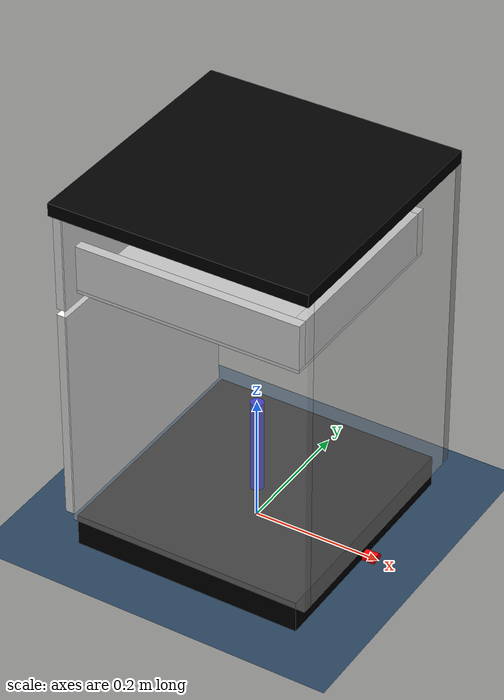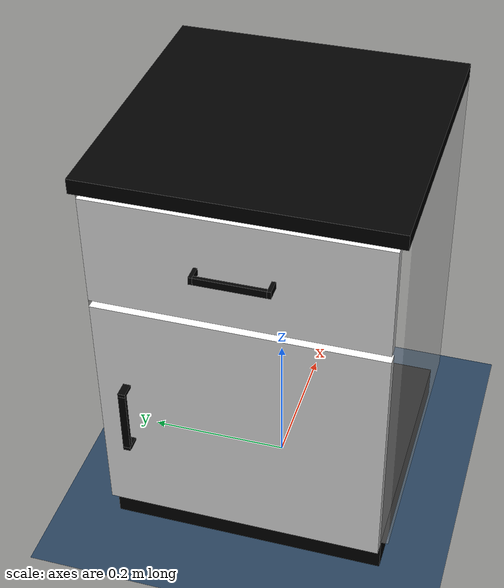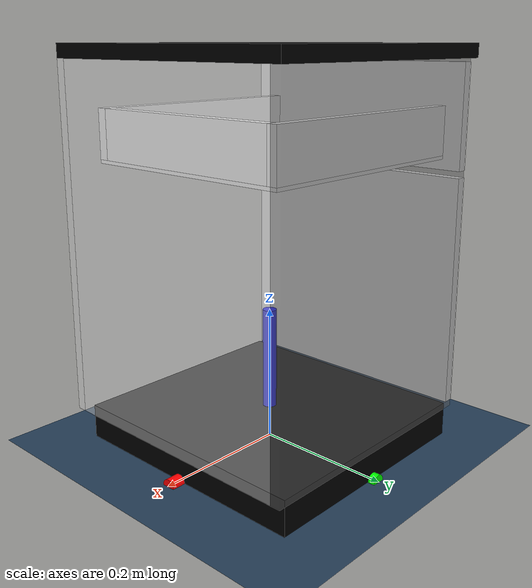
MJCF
<!--cabinet，用于截图-->
<mujoco model="jk5_cabinet">
    <include file="basic_env.xml"/>
    <asset>
        <material name="MatMetal" specular="1" shininess="0.3" rgba="0.9 0.9 0.9 1"/>
        <material name="MatDarkWood" texrepeat="3 3" specular="0.4" shininess="0.1"/>
        <material name="MatLightWood" texrepeat="3 3" specular="0.4" shininess="0.1"/>
    </asset>
    <worldbody>
        <body name="cabinet" pos="0 0 0" quat="0 0 0 1">
            <!--按压任务-->
            <body name="top board" pos="0 0 0.565">
                <geom size=".2 .2 .01" pos="0 0 0" type="box" rgba="0 0 0 1"
                      solimp="0.1 0.3 0.001 0.5 2" solref="-20000.0 -0.1"/>
                <inertial pos="0 0 0" mass="1000" diaginertia="0.1 0.1 0.1"/>
            </body>
            <!--抽屉任务。
            关闭时，把手中心实际位置为：0.8-0.2-0.0175,-0.1135,0.2+0.42+0.055=0.5825,-0.1135,0.675 -->
            <!--因此相对桌子底部中心的偏移为0.2175,0,0.475 -->
            <body name="drawer" pos="0.01 0 0.42">
                <!--底部-->
                <geom size=".175 .1625 .0025" pos="0 0 -0.0025" type="box" rgba="1 1 1 1"/>
                <!--侧面-->
                <geom size=".175 .0075 .035" pos="0 -0.1550 0.035" type="box" rgba="1 1 1 1"/>
                <geom size=".175 .0075 .035" pos="0 0.1550 0.035" type="box" rgba="1 1 1 1"/>
                <!--后面-->
                <geom size=".0075 .1475 .035" pos="-0.1675 0 0.035" type="box" rgba="1 1 1 1"/>
                <!--前面-->
                <geom size=".0075 .19 .075" pos="0.1825 0 0.055" type="box" rgba="1 1 1 1"
                      contype="0" conaffinity="0"/>
                <!--把手-->
                <body name="drawer handle part1" pos="0.19 0 0.055">
                    <geom size=".01 .0025 .005" pos="0.01 0.0475 0" type="box" rgba="0 0 0 1"/>
                    <geom size=".01 .0025 .005" pos="0.01 -0.0475 0" type="box" rgba="0 0 0 1"/>
                </body>
                <body name="drawer handle part2" pos="0.2075 0 0.055">
                    <geom size=".0025 .045 .005" pos="0 0 0" type="box" rgba="0 0 0 1"/>
                </body>
                <inertial pos="0 0 0" mass="1" diaginertia="0.1 0.1 0.1"/>
                <joint name="drawer joint" type="slide" pos="0 0 0" axis="1 0 0" range="0 0.3" limited="true"
                       damping="10" frictionloss="10"/>
            </body>
            <!--因此相对桌子底部中心的偏移为0.2175,-0.15,0.22 -->
            <body name="door" pos="0.1925 0 0.22">
                <!--门板-->
                <geom name="panel" size="0.0075 0.19 .17" type="box" material="MatDarkWood"/>
                <!--把手-->
                <body name="door handle part1" pos="0.0075 -0.15 0">
                    <geom size=".01 .005 .0025" pos="0.01 0 0.0475" type="box" rgba="0 0 0 1"/>
                    <geom size=".01 .005 .0025" pos="0.01 0 -0.0475" type="box" rgba="0 0 0 1"/>
                </body>
                <body name="door handle part2" pos="0.025 -0.15 0">
                    <geom size=".0025 .005 .045" pos="0 0 0" type="box" rgba="0 0 0 1"/>
                </body>
                <inertial pos="0.0296816 -0.00152345 0" quat="0.701072 0 0 0.713091"
                          mass="2.43455" diaginertia="0.0913751 0.0521615 0.043714"/>
                <joint name="door joint" pos="0 0.19 0" axis="0 0 1" range="0.0 1.5707" limited="true"
                       damping="1" frictionloss="1"/>
            </body>
            <!--无关接触-->
            <body name="bottem board" pos="0 0 0.025">
                <geom size=".18 .19 .025" pos="0 0 0" type="box" rgba="0 0 0 1"/>
                <inertial pos="0 0 0" mass="1000" diaginertia="0.1 0.1 0.1"/>
            </body>
            <body name="left board" pos="-0.01 0.1925 0.3025">
                <geom size=".19 .0075 0.2525" pos="0 0 0" type="box" rgba="1 1 1 0.5"/>
                <inertial pos="0 0 0" mass="1" diaginertia="0.1 0.1 0.1"/>
            </body>
            <body name="right board" pos="-0.01 -0.1925 0.3025">
                <geom size=".19 .0075 0.2525" pos="0 0 0" type="box" rgba="0.5 0.5 0.5 0.5"/>
                <inertial pos="0 0 0" mass="1" diaginertia="0.1 0.1 0.1"/>
            </body>
            <body name="back board" pos="-0.1925 0 0.3025">
                <geom size=".0075 .185 0.2525" pos="0 0 0" type="box" rgba="1 1 1 0.5"/>
                <inertial pos="0 0 0" mass="1" diaginertia="0.1 0.1 0.1"/>
            </body>
        </body>
    </worldbody>
</mujoco>

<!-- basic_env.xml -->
<mujoco model="basic setting">
    <compiler angle="radian" meshdir="../meshes/" inertiafromgeom="false" coordinate="local"/>
    <size njmax="5000" nconmax="1000"/>
    <option timestep="2e-3">
        <flag contact="enable" warmstart="disable" frictionloss="enable"/>
    </option>
    <default>
        <geom solref=".002 1" friction="1 0.005 0.0001" condim="4"/>
    </default>
    <visual>
        <map force="10" torque="1"/>
        <rgba contactforce="1 0 0 1" contacttorque="0 1 0 1" contactfriction="0 0 1 1"/>
    </visual>
    <asset>
        <material name="common_mat" specular="0" shininess="0.5" reflectance="0" rgba="0.93 0.93 0.93 1"/>
        <material name='floor_mat' texture="floor_tex" shininess="0.8" texrepeat="10 10" specular="0.7" reflectance="0."/>
        <texture type="skybox" builtin="gradient" rgb1="1 1 1" rgb2="1 1 1" width="512" height="512"/>
        <texture name="floor_tex" type="2d" builtin="checker" rgb1=".2 .3 .4" rgb2=".1 .2 .3" width="100" height="100"/>
        <hfield name="sin_floor" file="sin floor.png" nrow="0" ncol="0" size="0.25 0.2 0.02 0.01"/>
    </asset>
    <worldbody>
        <light name="light" mode="fixed" directional="true" pos="1 0 3"/>
        <geom name='floor' material="floor_mat" pos='0 0 0' size='2.5 2.5 0.1' type='plane'/>
        <site name="w_x" pos="0.1 0 0" rgba="1 0 0 1" size="0.01 0.1" type="cylinder" quat="0 0.7071068 0 0.7071068"/>
        <site name="w_y" pos="0 0.1 0" rgba="0 1 0 1" size="0.01 0.1" type="cylinder" quat="0.7071068 -0.7071068 0 0"/>
        <site name="w_z" pos="0 0 0.1" rgba="0 0 1 1" size="0.01 0.1" type="cylinder" quat="1 0 0 0"/>
    </worldbody>
</mujoco>
